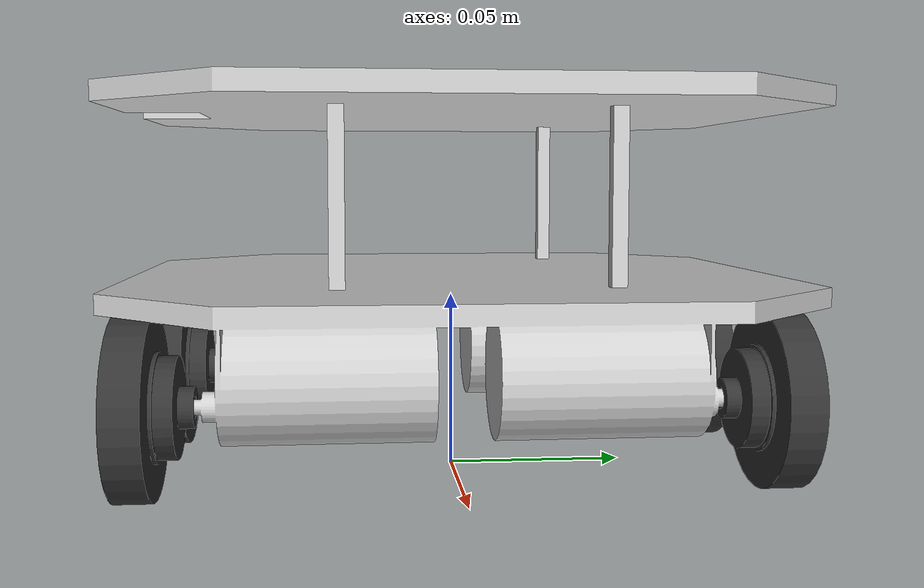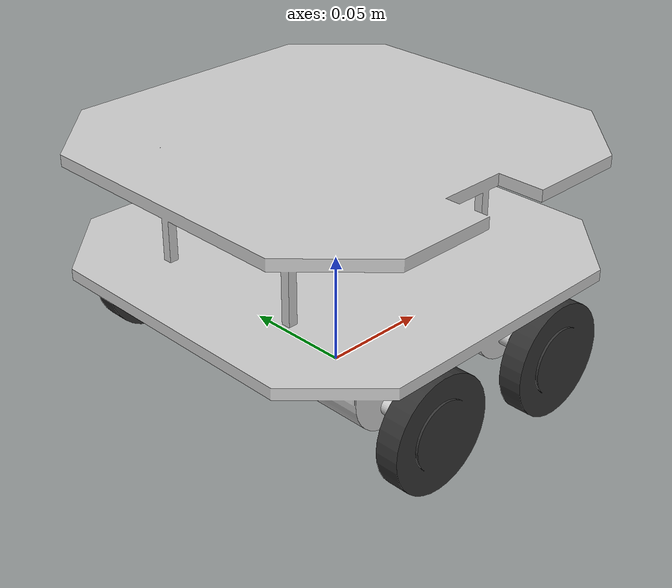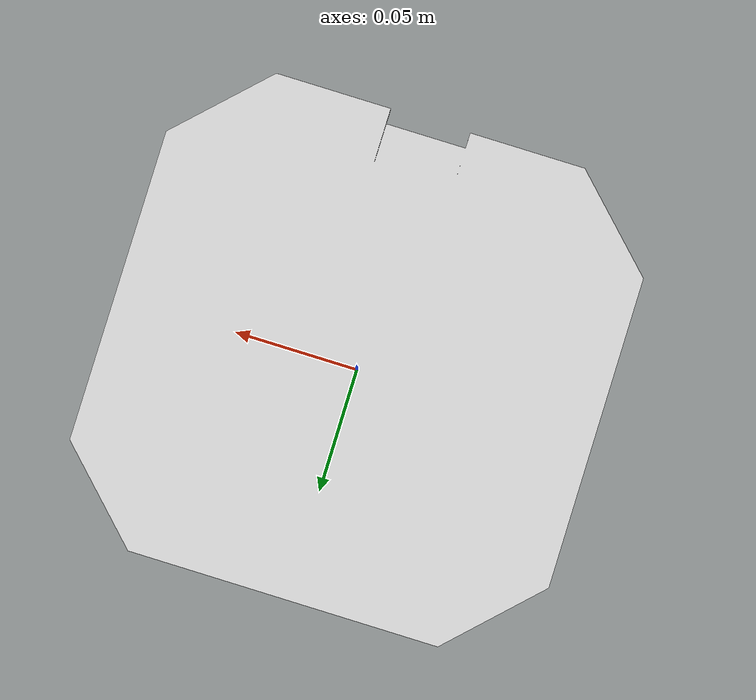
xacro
<?xml version="1.0"?>
<robot
  xmlns:controller="http://playerstage.sourceforge.net/gazebo/xmlschema/#controller"
  xmlns:interface="http://playerstage.sourceforge.net/gazebo/xmlschema/#interface"
  xmlns:xacro="http://ros.org/wiki/xacro"
  name="simplebot">

  <xacro:property name="M_PI" value="3.1415926535897931" />

  <xacro:property name="wheel_width" value="0.01" />
  <xacro:property name="wheel_radius" value="0.0245" />
  <xacro:property name="axis_length" value="0.160" />
  <xacro:property name="wheel_x_offset" value="0.035" />
  <xacro:property name="wheel_z_offset" value="-0.027" />
  <xacro:property name="turning_adaptation" value="0.95" />

  <xacro:property name="base_mass" value="1.7" />
  <xacro:property name="wheel_mass" value="0.02" />

  <xacro:property name="base_link_length" value="0.18"/>
  <xacro:property name="base_link_width" value="0.18"/>
  <xacro:property name="base_link_height" value="0.09"/>

  <link name="base_link">
    <visual>
      <origin xyz="0 0 0" rpy="0 0 0" />
      <geometry>
        <mesh filename="package://simplebot_driver/model/simplebot_base.stl"/>
      </geometry>
      <material name="grey" >
        <color rgba="0.8 0.8 0.8 1" />
      </material>
    </visual>

    <collision>
      <origin xyz="0 0 0" rpy="0 0 0" />
      <geometry>
        <mesh filename="package://simplebot_driver/model/simplebot_base.stl"/>
      </geometry>
    </collision>

    <inertial>
      <mass value="${base_mass}" />
      <origin xyz="0 0 0" />
      <inertia ixx="${0.0833333 * base_mass * (base_link_width*base_link_width + base_link_height*base_link_height)}" ixy="0.0" ixz="0.0"
        iyy="${0.0833333 * base_mass * (base_link_length*base_link_length + base_link_height*base_link_height)}" iyz="0.0"
        izz="${0.0833333 * base_mass * (base_link_length*base_link_length + base_link_width*base_link_width)}" />
    </inertial>
  </link>

  <xacro:macro name="wheel" params="name xyz rotate_visual friction">
    <link name="${name}_wheel_link">
      <visual>
        <origin xyz="0 0 0" rpy="0 0 ${rotate_visual * M_PI}" />
        <geometry>
          <mesh filename="package://simplebot_driver/model/simplebot_wheel.stl"/>
        </geometry>
        <material name="blackish">
          <color rgba="0.2 0.2 0.2 1"/>
        </material>
      </visual>

      <collision>
        <origin xyz="0 0 0" rpy="${M_PI/2} 0 0" />
        <geometry>
            <cylinder length="${wheel_width}" radius="${wheel_radius}"/>
        </geometry>
        <surface>
          <friction>
            <ode>
              <mu>0.1</mu>
              <mu2>0.1</mu2>
            </ode>
          </friction>
        </surface>
      </collision>

      <inertial>
        <mass value="${wheel_mass}" />
        <origin xyz="0 0 0" />
        <inertia ixx="${0.0833333 * wheel_mass * (3 * wheel_radius * wheel_radius + wheel_width * wheel_width)}" ixy="0.0" ixz="0.0"
          iyy="${0.0833333 * wheel_mass * (3 * wheel_radius * wheel_radius + wheel_width * wheel_width)}" iyz="0.0"
          izz="${0.5 * wheel_mass * wheel_radius * wheel_radius}" />
      </inertial>
    </link>

    <joint name="${name}_wheel_joint" type="continuous">
      <origin xyz="${xyz}" rpy="0 0 0" />
      <parent link="base_link"/>
      <child link="${name}_wheel_link"/>
      <axis xyz="0 1 0"/>
    </joint>

    <gazebo reference="${name}_wheel_link">
      <mu1>1.0</mu1>
      <mu2>1.0</mu2>
      <material>Gazebo/Black</material>
      <kp>100000.0</kp>
      <kd>10.0</kd>
      <fdir1>1 0 0</fdir1>
      <maxVel>1.0</maxVel>
      <minDepth>0.00</minDepth>
      <selfCollide>false</selfCollide>
    </gazebo>
  </xacro:macro>

  <xacro:wheel name="left_front" xyz="${wheel_x_offset} ${axis_length/2} ${wheel_z_offset}" rotate_visual="1" friction="1.0" />
  <xacro:wheel name="left_rear" xyz="${-wheel_x_offset} ${axis_length/2} ${wheel_z_offset}" rotate_visual="1" friction="1.0" />
  <xacro:wheel name="right_front" xyz="${wheel_x_offset} ${-axis_length/2} ${wheel_z_offset}" rotate_visual="0" friction="1.0" />
  <xacro:wheel name="right_rear" xyz="${-wheel_x_offset} ${-axis_length/2} ${wheel_z_offset}" rotate_visual="0" friction="1.0" />

  <link name="base_footprint"/>

  <joint name="base_footprint_joint" type="fixed">
    <origin xyz="0 0 ${wheel_radius -  wheel_z_offset}" rpy="0 0 0" />
    <parent link="base_footprint"/>
    <child link="base_link" />
  </joint>

  <link name="base_top" />

  <joint name="base_top_joint" type="fixed">
    <origin xyz="0 0 ${base_link_height / 2.0}" rpy="0 0 0" />
    <parent link="base_link" />
    <child link="base_top"/>
  </joint>

  <gazebo>
    <plugin name="skid_steer_drive_controller" filename="libgazebo_ros_skid_steer_drive.so">
      <updateRate>200.0</updateRate>
      <robotNamespace>/</robotNamespace>
      <leftFrontJoint>left_front_wheel_joint</leftFrontJoint>
      <rightFrontJoint>right_front_wheel_joint</rightFrontJoint>
      <leftRearJoint>left_rear_wheel_joint</leftRearJoint>
      <rightRearJoint>right_rear_wheel_joint</rightRearJoint>
      <wheelSeparation>${axis_length}</wheelSeparation>
      <wheelDiameter>${2*wheel_radius}</wheelDiameter>
      <robotBaseFrame>base_footprint</robotBaseFrame>
      <torque>1</torque>
      <commandTopic>cmd_vel</commandTopic>
      <odometryTopic>odom_combined</odometryTopic>
      <odometryFrame>odom_combined</odometryFrame>
      <covariance_x>0</covariance_x>
      <covariance_y>0</covariance_y>
      <covariance_yaw>0</covariance_yaw>
      <broadcastTF>True</broadcastTF>
    </plugin>
  </gazebo>
</robot>
